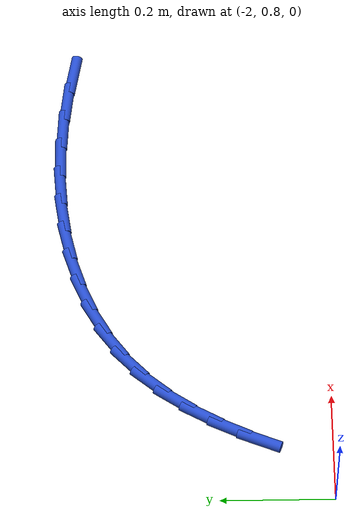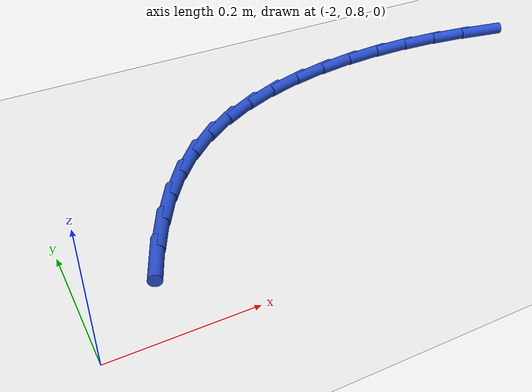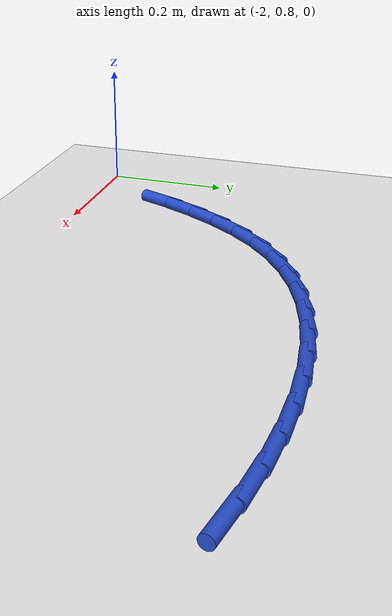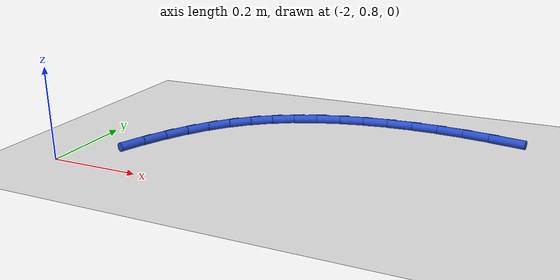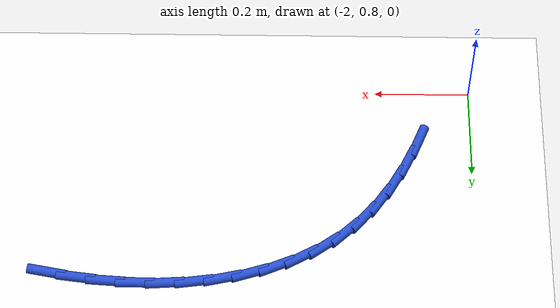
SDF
<sdf version="1.6">
 <world name="default">
  <model name="ground_plane">
   <static>1</static>
   <link name="link">
    <collision name="collision">
     <geometry><plane><normal>0 0 1</normal><size>100 100</size></plane></geometry>
     <surface><friction><ode><mu>100</mu><mu2>50</mu2></ode></friction></surface>
    </collision>
    <visual name="visual">
     <cast_shadows>0</cast_shadows>
     <geometry><plane><normal>0 0 1</normal><size>100 100</size></plane></geometry>
     <material>
      <script><uri>file://media/materials/scripts/gazebo.material</uri><name>Gazebo/WhiteGlow</name></script>
     </material>
    </visual>
   </link>
  </model>
  <model name="line">
   <link name="link_32">
    <pose>-1.1276839559582843 1.2532400797432568 0.01 0 1.57 -0.1841672364637123</pose>
    <collision name="collision">
     <geometry><cylinder><radius>0.01</radius><length>0.08</length></cylinder></geometry>
    </collision>
    <visual name="visual">
     <material>
      <script><name>Gazebo/Blue</name><uri>file://media/materials/scripts/gazebo.material</uri></script>
     </material>
     <geometry><cylinder><radius>0.01</radius><length>0.08</length></cylinder></geometry>
    </visual>
   </link>
   <link name="link_33">
    <pose>-1.187270099042369 1.2643396701028788 0.01 0 1.57 -0.12463183142227138</pose>
    <collision name="collision">
     <geometry><cylinder><radius>0.01</radius><length>0.08</length></cylinder></geometry>
    </collision>
    <visual name="visual">
     <material>
      <script><name>Gazebo/Blue</name><uri>file://media/materials/scripts/gazebo.material</uri></script>
     </material>
     <geometry><cylinder><radius>0.01</radius><length>0.08</length></cylinder></geometry>
    </visual>
   </link>
   <link name="link_34">
    <pose>-1.2474468619700483 1.2718786855009816 0.01 0 1.57 -0.0632268057902852</pose>
    <collision name="collision">
     <geometry><cylinder><radius>0.01</radius><length>0.08</length></cylinder></geometry>
    </collision>
    <visual name="visual">
     <material>
      <script><name>Gazebo/Blue</name><uri>file://media/materials/scripts/gazebo.material</uri></script>
     </material>
     <geometry><cylinder><radius>0.01</radius><length>0.08</length></cylinder></geometry>
    </visual>
   </link>
   <link name="link_35">
    <pose>-1.3077158275145973 1.2756943856206968 0.01 0 1.57 0.0011752791518827705</pose>
    <collision name="collision">
     <geometry><cylinder><radius>0.01</radius><length>0.08</length></cylinder></geometry>
    </collision>
    <visual name="visual">
     <material>
      <script><name>Gazebo/Blue</name><uri>file://media/materials/scripts/gazebo.material</uri></script>
     </material>
     <geometry><cylinder><radius>0.01</radius><length>0.08</length></cylinder></geometry>
    </visual>
   </link>
   <link name="link_36">
    <pose>-1.3675785784492906 1.2756240301451554 0.01 0 1.57 0.06975237425512662</pose>
    <collision name="collision">
     <geometry><cylinder><radius>0.01</radius><length>0.08</length></cylinder></geometry>
    </collision>
    <visual name="visual">
     <material>
      <script><name>Gazebo/Blue</name><uri>file://media/materials/scripts/gazebo.material</uri></script>
     </material>
     <geometry><cylinder><radius>0.01</radius><length>0.08</length></cylinder></geometry>
    </visual>
   </link>
   <link name="link_37">
    <pose>-1.4265366975474043 1.2715048787574892 0.01 0 1.57 0.14374460452623145</pose>
    <collision name="collision">
     <geometry><cylinder><radius>0.01</radius><length>0.08</length></cylinder></geometry>
    </collision>
    <visual name="visual">
     <material>
      <script><name>Gazebo/Blue</name><uri>file://media/materials/scripts/gazebo.material</uri></script>
     </material>
     <geometry><cylinder><radius>0.01</radius><length>0.08</length></cylinder></geometry>
    </visual>
   </link>
   <link name="link_38">
    <pose>-1.4840917675822145 1.2631741911408298 0.01 0 1.57 0.22444033164215613</pose>
    <collision name="collision">
     <geometry><cylinder><radius>0.01</radius><length>0.08</length></cylinder></geometry>
    </collision>
    <visual name="visual">
     <material>
      <script><name>Gazebo/Blue</name><uri>file://media/materials/scripts/gazebo.material</uri></script>
     </material>
     <geometry><cylinder><radius>0.01</radius><length>0.08</length></cylinder></geometry>
    </visual>
   </link>
   <link name="link_39">
    <pose>-1.5397453713269964 1.2504692269783089 0.01 0 1.57 0.3131194126029757</pose>
    <collision name="collision">
     <geometry><cylinder><radius>0.01</radius><length>0.08</length></cylinder></geometry>
    </collision>
    <visual name="visual">
     <material>
      <script><name>Gazebo/Blue</name><uri>file://media/materials/scripts/gazebo.material</uri></script>
     </material>
     <geometry><cylinder><radius>0.01</radius><length>0.08</length></cylinder></geometry>
    </visual>
   </link>
   <link name="link_40">
    <pose>-1.5929990915550254 1.2332272459530587 0.01 0 1.57 0.4109300336496646</pose>
    <collision name="collision">
     <geometry><cylinder><radius>0.01</radius><length>0.08</length></cylinder></geometry>
    </collision>
    <visual name="visual">
     <material>
      <script><name>Gazebo/Blue</name><uri>file://media/materials/scripts/gazebo.material</uri></script>
     </material>
     <geometry><cylinder><radius>0.01</radius><length>0.08</length></cylinder></geometry>
    </visual>
   </link>
   <link name="link_41">
    <pose>-1.6433545110395769 1.21128550774821 0.01 0 1.57 0.5186754947817482</pose>
    <collision name="collision">
     <geometry><cylinder><radius>0.01</radius><length>0.08</length></cylinder></geometry>
    </collision>
    <visual name="visual">
     <material>
      <script><name>Gazebo/Blue</name><uri>file://media/materials/scripts/gazebo.material</uri></script>
     </material>
     <geometry><cylinder><radius>0.01</radius><length>0.08</length></cylinder></geometry>
    </visual>
   </link>
   <link name="link_42">
    <pose>-1.6903132125539275 1.184481272046895 0.01 0 1.57 0.6365064290125252</pose>
    <collision name="collision">
     <geometry><cylinder><radius>0.01</radius><length>0.08</length></cylinder></geometry>
    </collision>
    <visual name="visual">
     <material>
      <script><name>Gazebo/Blue</name><uri>file://media/materials/scripts/gazebo.material</uri></script>
     </material>
     <geometry><cylinder><radius>0.01</radius><length>0.08</length></cylinder></geometry>
    </visual>
   </link>
   <link name="link_43">
    <pose>-1.7333767788713523 1.1526517985322446 0.01 0 1.57 0.7620923030224126</pose>
    <collision name="collision">
     <geometry><cylinder><radius>0.01</radius><length>0.08</length></cylinder></geometry>
    </collision>
    <visual name="visual">
     <material>
      <script><name>Gazebo/Blue</name><uri>file://media/materials/scripts/gazebo.material</uri></script>
     </material>
     <geometry><cylinder><radius>0.01</radius><length>0.08</length></cylinder></geometry>
    </visual>
   </link>
   <link name="link_44">
    <pose>-1.7721022830673112 1.1156905584695285 0.01 0 1.57 0.8794594632520938</pose>
    <collision name="collision">
     <geometry><cylinder><radius>0.01</radius><length>0.08</length></cylinder></geometry>
    </collision>
    <visual name="visual">
     <material>
      <script><name>Gazebo/Blue</name><uri>file://media/materials/scripts/gazebo.material</uri></script>
     </material>
     <geometry><cylinder><radius>0.01</radius><length>0.08</length></cylinder></geometry>
    </visual>
   </link>
   <link name="link_45">
    <pose>-1.8065794699950954 1.07403061873284 0.01 0 1.57 0.979781480544474</pose>
    <collision name="collision">
     <geometry><cylinder><radius>0.01</radius><length>0.08</length></cylinder></geometry>
    </collision>
    <visual name="visual">
     <material>
      <script><name>Gazebo/Blue</name><uri>file://media/materials/scripts/gazebo.material</uri></script>
     </material>
     <geometry><cylinder><radius>0.01</radius><length>0.08</length></cylinder></geometry>
    </visual>
   </link>
   <link name="link_46">
    <pose>-1.8371949500484261 1.0284057704859664 0.01 0 1.57 1.0636477070948902</pose>
    <collision name="collision">
     <geometry><cylinder><radius>0.01</radius><length>0.08</length></cylinder></geometry>
    </collision>
    <visual name="visual">
     <material>
      <script><name>Gazebo/Blue</name><uri>file://media/materials/scripts/gazebo.material</uri></script>
     </material>
     <geometry><cylinder><radius>0.01</radius><length>0.08</length></cylinder></geometry>
    </visual>
   </link>
   <link name="link_47">
    <pose>-1.8643385481113246 0.9795530611659267 0.01 0 1.57 1.1325513544827652</pose>
    <collision name="collision">
     <geometry><cylinder><radius>0.01</radius><length>0.08</length></cylinder></geometry>
    </collision>
    <visual name="visual">
     <material>
      <script><name>Gazebo/Blue</name><uri>file://media/materials/scripts/gazebo.material</uri></script>
     </material>
     <geometry><cylinder><radius>0.01</radius><length>0.08</length></cylinder></geometry>
    </visual>
   </link>
   <link name="link_48">
    <pose>-1.888400089067813 0.9282095382097407 0.01 0 1.57 1.1881747278356067</pose>
    <collision name="collision">
     <geometry><cylinder><radius>0.01</radius><length>0.08</length></cylinder></geometry>
    </collision>
    <visual name="visual">
     <material>
      <script><name>Gazebo/Blue</name><uri>file://media/materials/scripts/gazebo.material</uri></script>
     </material>
     <geometry><cylinder><radius>0.01</radius><length>0.08</length></cylinder></geometry>
    </visual>
   </link>
  </model>
 </world>
</sdf>
